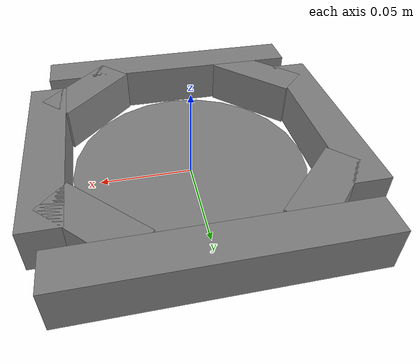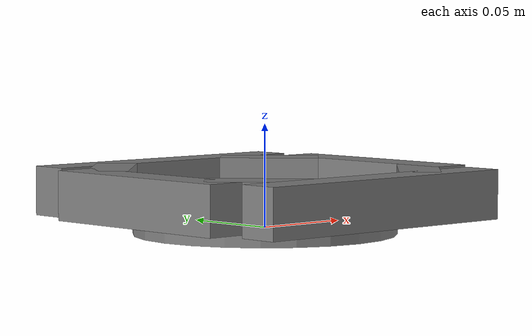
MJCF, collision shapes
<mujoco model="bowl">
  <compiler angle="radian" meshdir="assets" autolimits="true"/>

  <asset>
    <mesh name="bowl_mesh" file="bowl.stl" scale="0.001 0.001 0.001"/>
  </asset>

  <worldbody>
    <body name="bowl_body">

      <!-- visual: full mesh, no collision -->
      <geom type="mesh" mesh="bowl_mesh" contype="0" conaffinity="0" group="2"
            rgba="0.8 0.6 0.2 1"/>

      <!-- base plate -->
      <geom type="cylinder" size="0.064 0.004" pos="0 0 0.001"
            group="3" friction="1 0.3 0.1"
            solref="0.004 1" solimp="0.99 0.999 0.001 0.5 2"/>

      <!-- north wall (+y) -->
      <geom type="box" size="0.074 0.010 0.012" pos="0 0.074 0.017"
            group="3" friction="1 0.3 0.1"
            solref="0.004 1" solimp="0.99 0.999 0.001 0.5 2"/>

      <!-- south wall (-y) -->
      <geom type="box" size="0.074 0.010 0.012" pos="0 -0.074 0.017"
            group="3" friction="1 0.3 0.1"
            solref="0.004 1" solimp="0.99 0.999 0.001 0.5 2"/>

      <!-- east wall (+x) -->
      <geom type="box" size="0.010 0.054 0.012" pos="0.074 0 0.017"
            group="3" friction="1 0.3 0.1"
            solref="0.004 1" solimp="0.99 0.999 0.001 0.5 2"/>

      <!-- west wall (-x) -->
      <geom type="box" size="0.010 0.054 0.012" pos="-0.074 0 0.017"
            group="3" friction="1 0.3 0.1"
            solref="0.004 1" solimp="0.99 0.999 0.001 0.5 2"/>

      <geom type="box" size="0.025 0.010 0.012" pos="0.0523 0.0523 0.017"
            euler="0 0 -0.785398" group="3" friction="1 0.3 0.1"
            solref="0.004 1" solimp="0.99 0.999 0.001 0.5 2"/>

      <!-- NW diagonal wall -->
      <geom type="box" size="0.025 0.010 0.012" pos="-0.0523 0.0523 0.017"
            euler="0 0 0.785398" group="3" friction="1 0.3 0.1"
            solref="0.004 1" solimp="0.99 0.999 0.001 0.5 2"/>

      <!-- SW diagonal wall -->
      <geom type="box" size="0.025 0.010 0.012" pos="-0.0523 -0.0523 0.017"
            euler="0 0 2.356194" group="3" friction="1 0.3 0.1"
            solref="0.004 1" solimp="0.99 0.999 0.001 0.5 2"/>

      <!-- SE diagonal wall -->
      <geom type="box" size="0.025 0.010 0.012" pos="0.0523 -0.0523 0.017"
            euler="0 0 0.785398" group="3" friction="1 0.3 0.1"
            solref="0.004 1" solimp="0.99 0.999 0.001 0.5 2"/>

    </body>
  </worldbody>

</mujoco>
